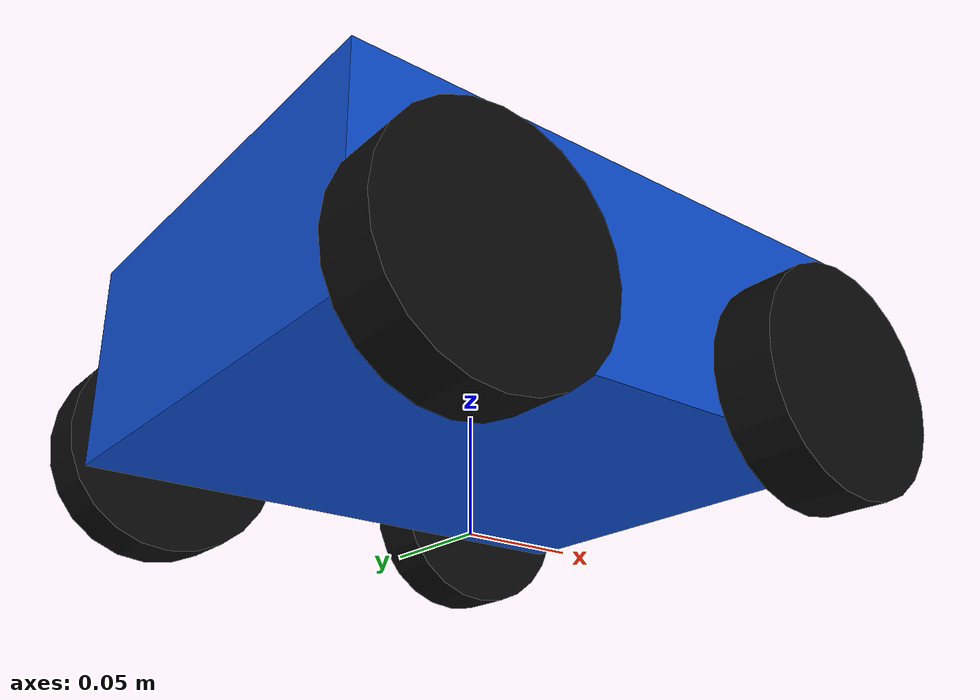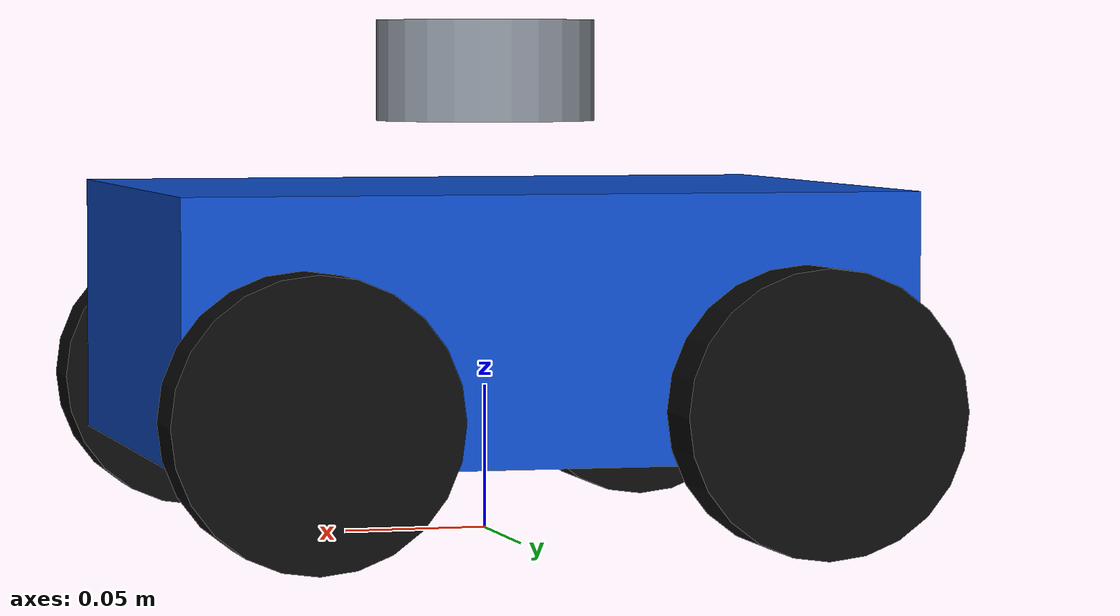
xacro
<?xml version="1.0"?>
<robot xmlns:xacro="http://www.ros.org/wiki/xacro" name="landerpi_sim">
  <xacro:property name="wheel_radius" value="0.048"/>
  <xacro:property name="wheel_width" value="0.026"/>

  <material name="blue"><color rgba="0.05 0.30 0.80 1"/></material>
  <material name="black"><color rgba="0.04 0.04 0.04 1"/></material>
  <material name="silver"><color rgba="0.55 0.58 0.62 1"/></material>

  <link name="base_footprint"/>
  <joint name="base_joint" type="fixed">
    <parent link="base_footprint"/>
    <child link="base_link"/>
    <origin xyz="0 0 0.075"/>
  </joint>

  <link name="base_link">
    <visual>
      <geometry><box size="0.25 0.20 0.09"/></geometry>
      <material name="blue"/>
    </visual>
    <collision><geometry><box size="0.25 0.20 0.09"/></geometry></collision>
    <inertial>
      <mass value="3.0"/>
      <inertia ixx="0.0120" ixy="0" ixz="0" iyy="0.0190" iyz="0" izz="0.0260"/>
    </inertial>
  </link>

  <xacro:macro name="wheel" params="name x y">
    <link name="${name}">
      <visual>
        <origin rpy="${pi/2} 0 0"/>
        <geometry><cylinder radius="${wheel_radius}" length="${wheel_width}"/></geometry>
        <material name="black"/>
      </visual>
      <collision>
        <origin rpy="${pi/2} 0 0"/>
        <geometry><cylinder radius="${wheel_radius}" length="${wheel_width}"/></geometry>
      </collision>
      <inertial>
        <mass value="0.12"/>
        <inertia ixx="0.00008" ixy="0" ixz="0" iyy="0.00014" iyz="0" izz="0.00008"/>
      </inertial>
    </link>
    <joint name="${name}_joint" type="continuous">
      <parent link="base_link"/><child link="${name}"/>
      <origin xyz="${x} ${y} -0.027"/>
      <axis xyz="0 1 0"/>
    </joint>
  </xacro:macro>

  <xacro:wheel name="front_left_wheel" x="0.085" y="0.113"/>
  <xacro:wheel name="front_right_wheel" x="0.085" y="-0.113"/>
  <xacro:wheel name="rear_left_wheel" x="-0.085" y="0.113"/>
  <xacro:wheel name="rear_right_wheel" x="-0.085" y="-0.113"/>

  <link name="lidar_link">
    <visual><geometry><cylinder radius="0.038" length="0.035"/></geometry><material name="silver"/></visual>
    <collision><geometry><cylinder radius="0.038" length="0.035"/></geometry></collision>
    <inertial><mass value="0.08"/><inertia ixx="0.00004" ixy="0" ixz="0" iyy="0.00004" iyz="0" izz="0.00006"/></inertial>
  </link>
  <joint name="lidar_joint" type="fixed">
    <parent link="base_link"/><child link="lidar_link"/><origin xyz="0 0 0.085"/>
  </joint>

  <gazebo reference="base_link"><material>Gazebo/Blue</material></gazebo>
  <gazebo reference="front_left_wheel"><material>Gazebo/Black</material><mu1>0.1</mu1><mu2>0.1</mu2></gazebo>
  <gazebo reference="front_right_wheel"><material>Gazebo/Black</material><mu1>0.1</mu1><mu2>0.1</mu2></gazebo>
  <gazebo reference="rear_left_wheel"><material>Gazebo/Black</material><mu1>0.1</mu1><mu2>0.1</mu2></gazebo>
  <gazebo reference="rear_right_wheel"><material>Gazebo/Black</material><mu1>0.1</mu1><mu2>0.1</mu2></gazebo>

  <gazebo>
    <plugin name="landerpi_planar_drive" filename="libgazebo_ros_planar_move.so">
      <ros>
        <namespace>/</namespace>
        <remapping>cmd_vel:=cmd_vel</remapping>
        <remapping>odom:=odom</remapping>
      </ros>
      <update_rate>50.0</update_rate>
      <publish_odom>true</publish_odom>
      <publish_odom_tf>true</publish_odom_tf>
      <publish_tf>true</publish_tf>
      <odometry_frame>odom</odometry_frame>
      <robot_base_frame>base_footprint</robot_base_frame>
    </plugin>
  </gazebo>

  <gazebo reference="lidar_link">
    <sensor name="landerpi_lidar" type="ray">
      <always_on>true</always_on>
      <visualize>true</visualize>
      <update_rate>10</update_rate>
      <ray>
        <scan><horizontal><samples>720</samples><resolution>1</resolution><min_angle>-${pi}</min_angle><max_angle>${pi}</max_angle></horizontal></scan>
        <range><min>0.12</min><max>12.0</max><resolution>0.01</resolution></range>
        <noise><type>gaussian</type><mean>0.0</mean><stddev>0.005</stddev></noise>
      </ray>
      <plugin name="landerpi_laser" filename="libgazebo_ros_ray_sensor.so">
        <ros><remapping>~/out:=scan</remapping></ros>
        <output_type>sensor_msgs/LaserScan</output_type>
        <frame_name>lidar_link</frame_name>
      </plugin>
    </sensor>
  </gazebo>
</robot>
